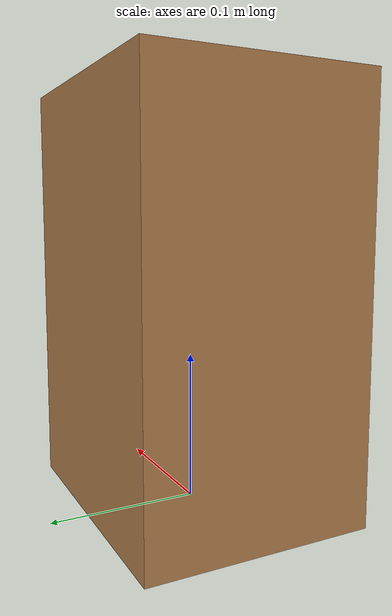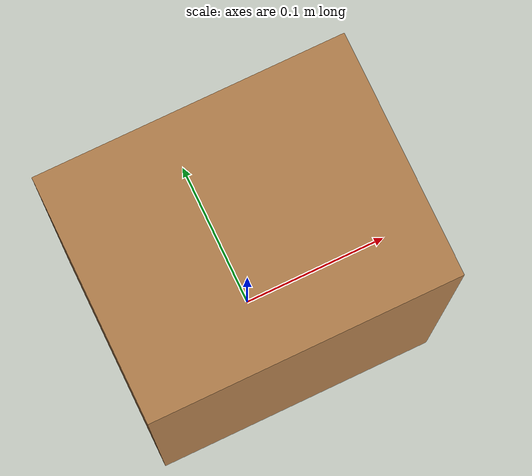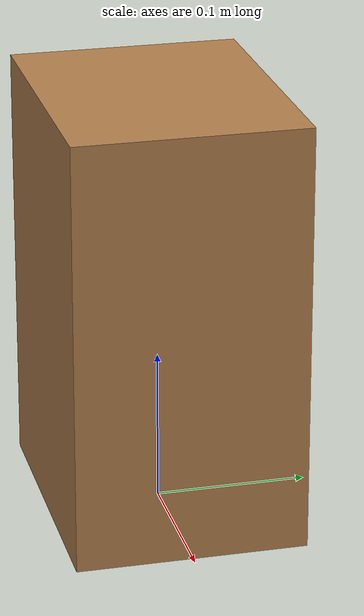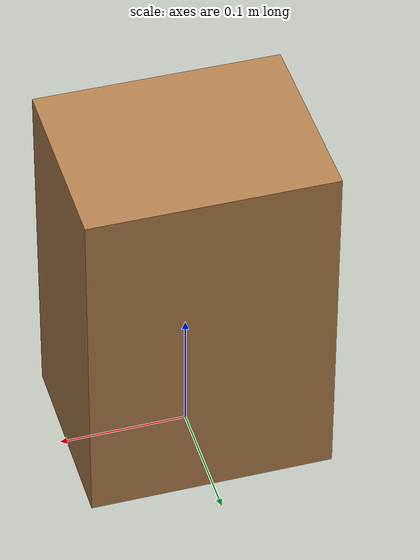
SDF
<?xml version='1.0'?>
<sdf version='1.7'>
  <model name='cube'>
    <static>true</static>
    <pose>0 0 0 0 -0 0</pose>
    <link name='Wall_28'>
      <collision name='Wall_28_Collision'>
        <geometry>
          <box>
            <size>0.19 0.15 0.28</size>
          </box>
        </geometry>
        <pose>0 0 0.14 0 -0 0</pose>
      </collision>
      <visual name='Wall_28_Visual'>
        <pose>0 0 0.14 0 -0 0</pose>
        <geometry>
          <box>
            <size>0.19 0.15 0.28</size>
          </box>
        </geometry>
        <material>
          <script>
            <uri>file://media/materials/scripts/gazebo.material</uri>
            <name>Gazebo/Wood</name>
          </script>
          <ambient>1 0.764706 0.305882 1</ambient>
        </material>
        <meta>
          <layer>0</layer>
        </meta>
      </visual>
      <pose>0 0 0 0 -0 0</pose>
    </link>
    <static>1</static>
  </model>
</sdf>
